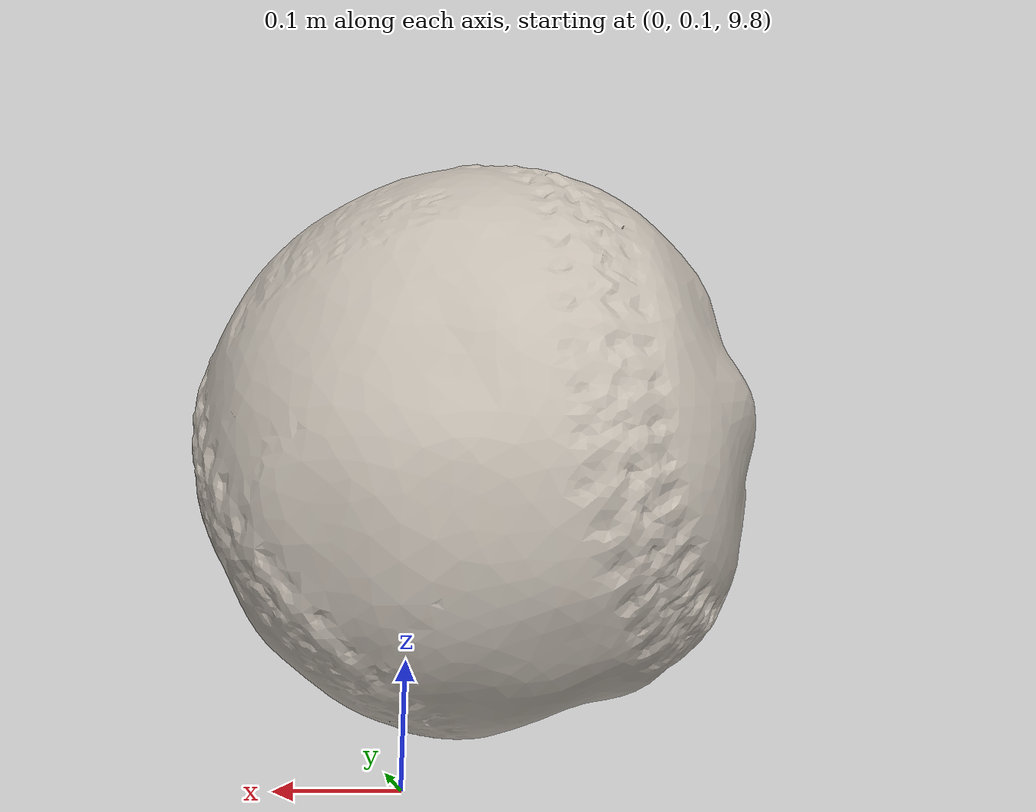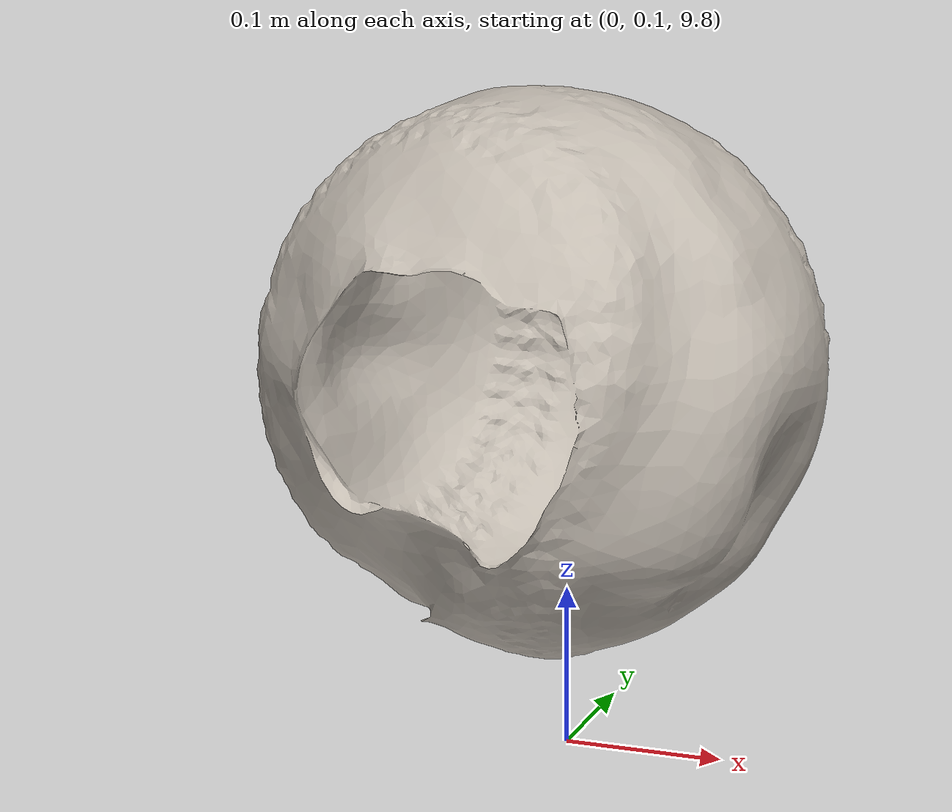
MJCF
<mujoco model="unnamed_model">
  <compiler angle="radian"/>

  <visual>
    <global azimuth="0" elevation="-20" offheight="640" fovy="75"/>
  </visual>

  <statistic meansize="0.08"/>

  <default>
    <default class="/"/>
  </default>

  <asset>
    <texture type="2d" name="grid" builtin="checker" mark="cross"
             rgb1="0.2 0.3 0.4" rgb2="0.1 0.2 0.3" width="256" height="256"/>
    <material name="grid" texture="grid" specular="0.3" shininess="0.5" reflectance="0.2"/>

    <!-- Load the diffuse texture from the mtl file -->
  <texture name="tex_diffuse" type="2d" file="./Assets/Baseball_Mesh/textures/e459ae40f53e22d12b4b1f5cc531e335.png"/>

  <!-- Define a material that uses that texture -->
  <material name="my_material" texture="tex_diffuse" specular="0.3" shininess="0.5" reflectance="0.2"/>

  <!-- Load the mesh from the .obj -->
  <mesh name="my_mesh" file="./Assets/Baseball_Mesh/5_12_2025.obj"/>

  </asset>

  <asset>

</asset>

  <worldbody>
    <light name="unnamed_light_0" class="/" pos="0 0 1.5" dir="0 0 -1" directional="true"/>

      <camera name="realsense" pos="0 0 10" quat="0.7071 0 0 0.7071" fovy="72.3"/>

<body name="textured_object" pos="0 0 10" > <!-- 0 0 2 quat = "0.7071 0 0 0.7071" -->
  <joint type="free" name="baseball_joint"/>
  <geom type="mesh" mesh="my_mesh" material="my_material" />
</body>
  </worldbody>
</mujoco>
